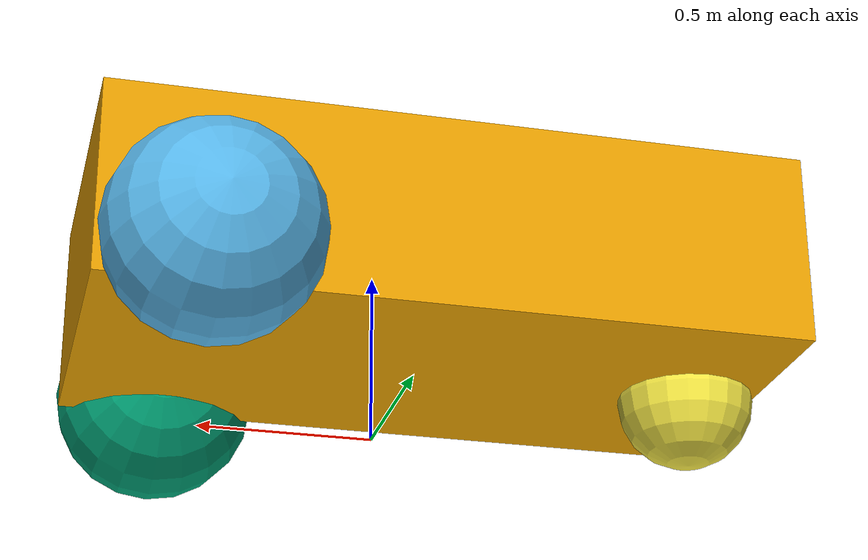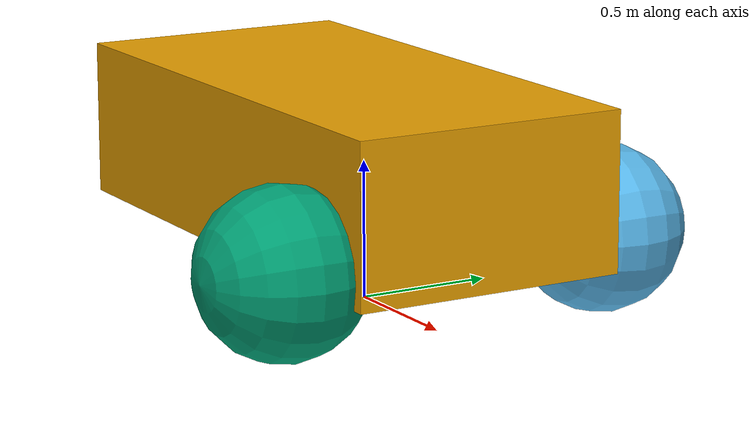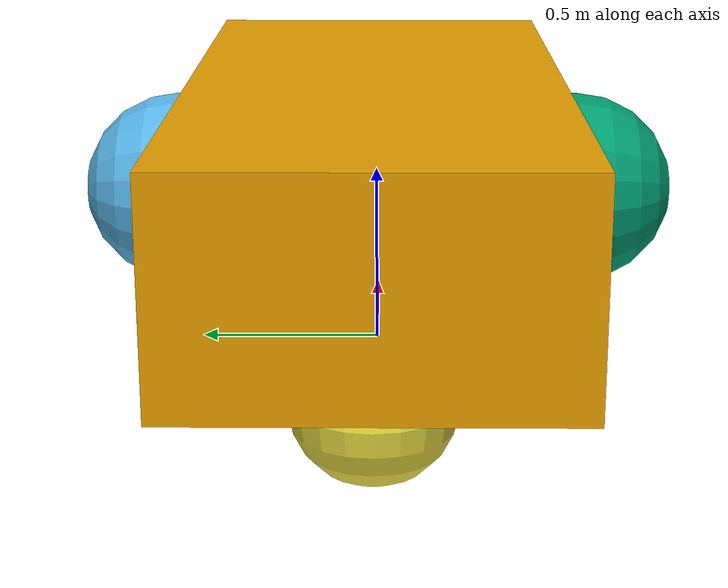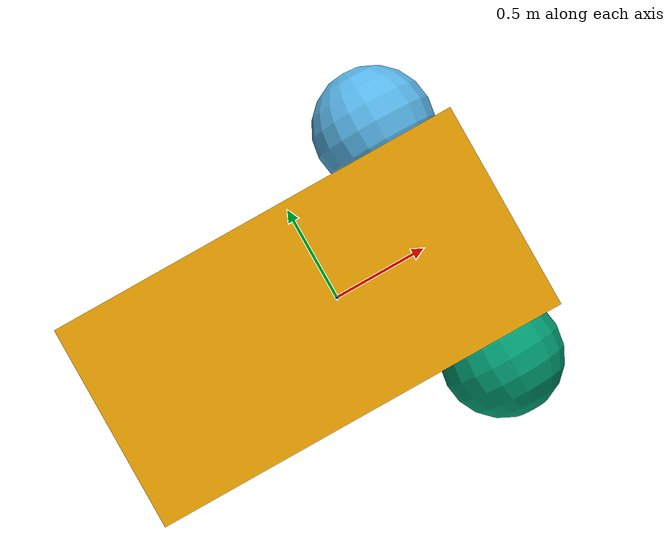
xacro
<?xml version="1.0"?>
<!-- Basic differential drive mobile base -->
<robot xmlns:xacro="http://www.ros.org/wiki/xacro" name="capstone_robot">
  <xacro:arg name="prefix" default="" />
  <xacro:arg name="use_gazebo" default="false"/>
  <xacro:arg name="use_fake_hardware" default="true"/>

  <xacro:include filename="$(find diffdrive_arduino)/urdf/capstone_description.urdf.xacro" />

  <!-- Import Rviz colors -->
  <xacro:include filename="$(find diffdrive_arduino)/urdf/capstone.materials.xacro" />

  <!-- Import capstone ros2_control description -->

  <xacro:if value="$(arg use_gazebo)">
    <xacro:include filename="$(find diffdrive_arduino)/ros2_control/capstone_gazebo.ros2_control.xacro" />
  </xacro:if>

  <xacro:unless value="$(arg use_gazebo)">
    <xacro:if value="$(arg use_fake_hardware)">
      <xacro:include filename="$(find diffdrive_arduino)/ros2_control/capstone_fake.ros2_control.xacro" />
    </xacro:if>
    <xacro:unless value="$(arg use_fake_hardware)">
      <xacro:include filename="$(find diffdrive_arduino)/ros2_control/capstone.ros2_control.xacro" />
    </xacro:unless>
  </xacro:unless>

  <xacro:capstone prefix="$(arg prefix)" />
  <xacro:capstone_ros2_control name="Capstone" prefix="$(arg prefix)" />
</robot>

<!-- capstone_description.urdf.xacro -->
<robot xmlns:xacro="http://www.ros.org/wiki/xacro">

  <xacro:macro name="capstone" params="prefix">

    <link name="chassis">
      <collision>
        <origin xyz="-0.151427 -0 0.5" rpy="0 0 0"/>
        <geometry>
          <box size="2.01142 1 0.568726"/>
        </geometry>
      </collision>

      <visual>
        <origin xyz="-0.151427 -0 0.5" rpy="0 0 0"/>
        <geometry>
          <box size="2.01142 1 0.568726"/>
        </geometry>
      </visual>

      <inertial>
        <origin xyz="-0.151427 -0 0.5" rpy="0 0 0"/>
        <mass value="1.14395"/>
        <inertia
          ixx="0.126164"
          ixy="0.0"
          ixz="0.0"
          iyy="0.416519"
          iyz="0.0"
          izz="0.481014"/>
      </inertial>
    </link>

    <joint name="left_wheel_joint" type="continuous">
      <origin xyz="0.554283 0.625029 0.3" rpy="-1.5707 0 0"/>
      <parent link="chassis"/>
      <child link="left_wheel"/>
      <axis xyz="0 0 1"/>
      <dynamics damping="0.2"/>
    </joint>

    <!-- left wheel Link -->
    <link name="left_wheel">
      <collision>
        <geometry>
          <sphere radius="0.3"/>
        </geometry>
      </collision>

      <visual>
        <geometry>
          <sphere radius="0.3"/>
        </geometry>
      </visual>

      <inertial>
        <mass value="2"/>
        <inertia ixx="0.145833"
                ixy="0.0"
                ixz="0.0"
                iyy="0.145833"
                iyz="0.0"
                izz="0.125"/>
      </inertial>
    </link>

    <joint name="right_wheel_joint" type="continuous">
      <origin xyz="0.554283 -0.625029 0.3" rpy="-1.5707 0 0"/>
      <parent link="chassis"/>
      <child link="right_wheel"/>
      <axis xyz="0 0 1"/>
      <dynamics damping="0.2"/>
    </joint>

    <!-- right wheel Link -->
    <link name="right_wheel">
      <collision>
        <geometry>
          <sphere radius="0.3"/>
        </geometry>
      </collision>

      <visual>
        <geometry>
          <sphere radius="0.3"/>
        </geometry>
      </visual>

      <inertial>
        <mass value="2"/>
        <inertia ixx="0.145833"
                ixy="0.0"
                ixz="0.0"
                iyy="0.145833"
                iyz="0.0"
                izz="0.125"/>
        </inertial>
    </link>

    <joint name="caster_joint" type="fixed">
      <origin xyz="-0.957138 -0 0.2" rpy="0 0 0"/>
      <parent link="chassis"/>
      <child link="caster"/>
    </joint>

    <!-- caster frontal wheel Link -->
    <link name="caster">
      <collision>
        <geometry>
          <sphere radius="0.2"/>
        </geometry>
      </collision>

      <visual>
        <geometry>
          <sphere radius="0.2"/>
        </geometry>
      </visual>

      <inertial>
        <origin xyz="-0.957138 -0 0.2" rpy="0 0 0"/>
        <mass value="0.005"/>
        <inertia
          ixx="0.1"
          ixy="0.0"
          ixz="0.0"
          iyy="0.1"
          iyz="0.0"
          izz="0.1"/>
      </inertial>
    </link>
  </xacro:macro>

</robot>
